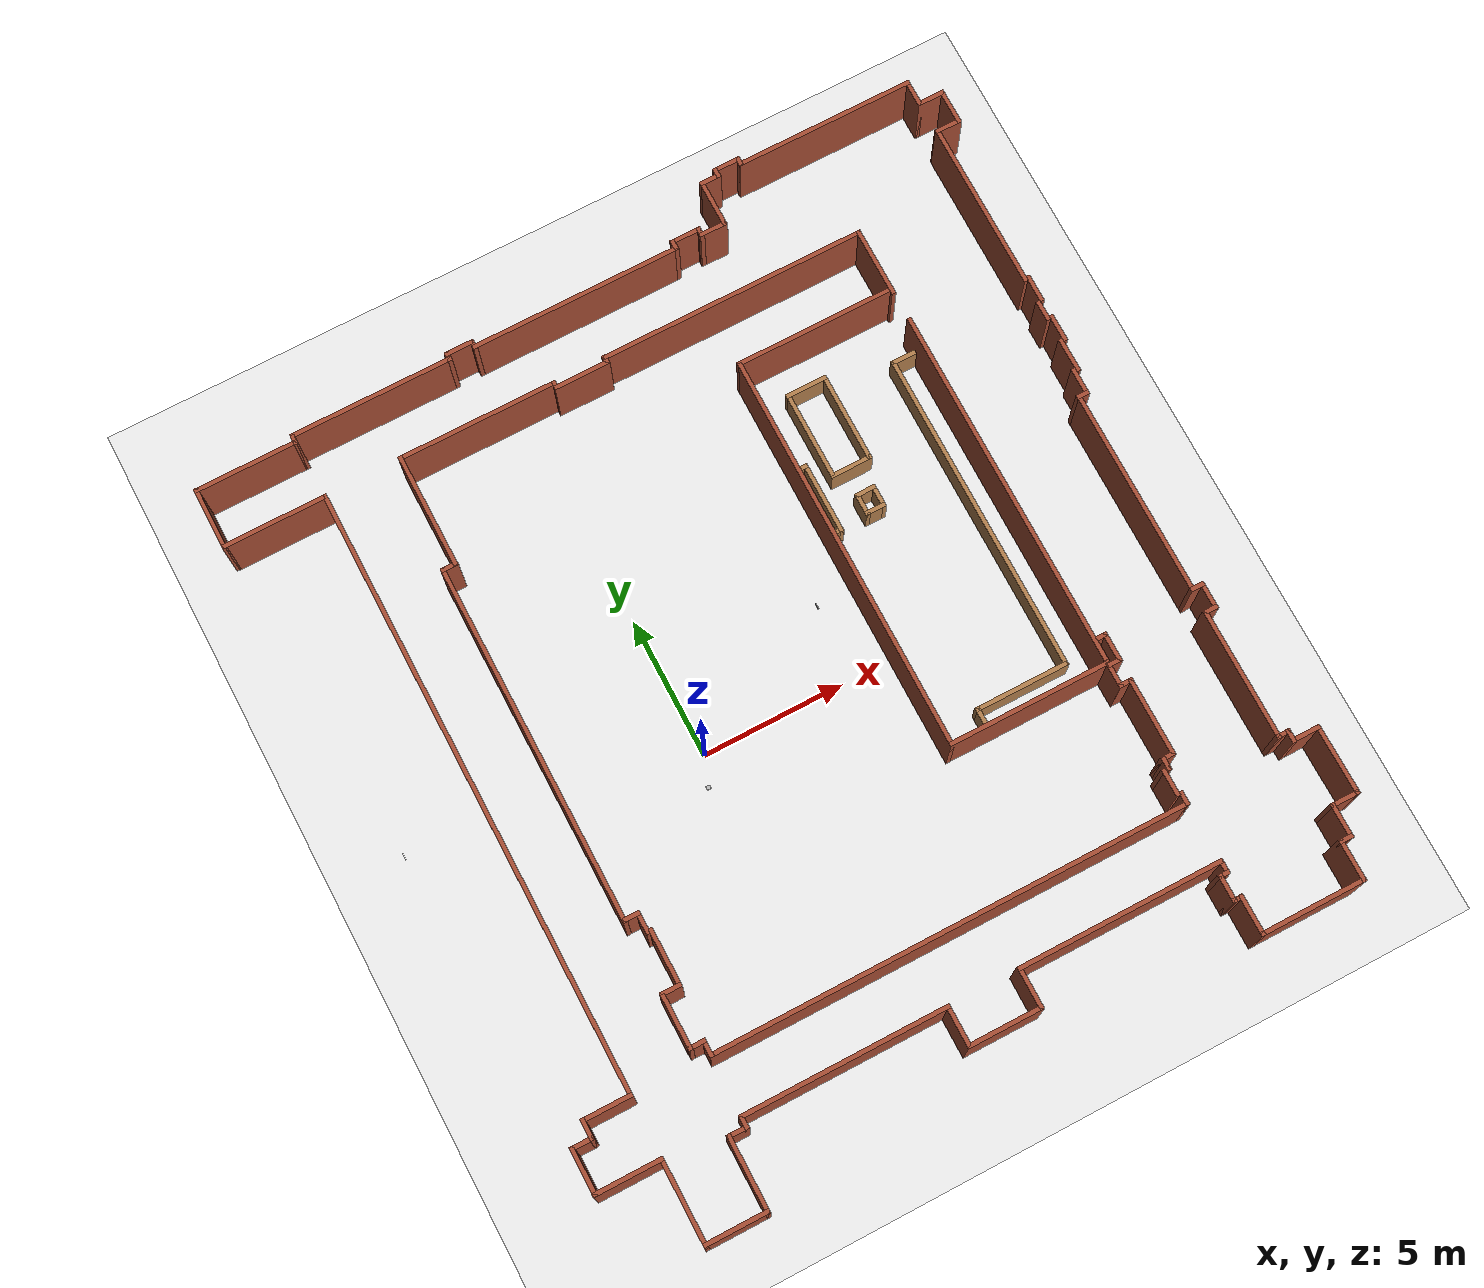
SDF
<sdf version="1.5">
 <world name="default">
  <physics type="ode">
   <max_step_size>0.001</max_step_size>
   <real_time_factor>1</real_time_factor>
   <real_time_update_rate>1000</real_time_update_rate>
   <gravity>0 0 -9.8</gravity>
  </physics>
  <include><uri>model://sun</uri></include>
  <include><uri>model://my_ground_plane</uri></include>
  <include><uri>model://A2230_arena</uri></include>
  <include><pose>7.9 15.0 0.5 0.0 1.57 1.57</pose><uri>model://Apriltag36_11_00006</uri></include>
  <include><pose>5.455 2.6 0.38 1.57 0.0 1.57</pose><uri>model://Apriltag36_11_00007</uri></include>
  <include><pose>-9.95 1.45 0.38 1.57 0.0 1.57</pose><uri>model://Apriltag36_11_00008</uri></include>
  <include><pose>12.82 6.5 0.38 0.0 1.57 0.0</pose><uri>model://Apriltag36_11_00009</uri></include>
  <include><pose>0 0 -5 0 0 0</pose><uri>model://Apriltag36_11_00002</uri></include>
 </world>
</sdf>

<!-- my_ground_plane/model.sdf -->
<sdf version="1.4">
<model name="my_ground_plane">
  <static>true</static>
    <link name="link">
      <collision name="collision">
        <geometry>
          <plane>
            <normal>0 0 1</normal>
            <size>150 150</size>
          </plane>
        </geometry>
        <surface>
          <friction>
            <ode>
              <mu>50</mu>
              <mu2>50</mu2>
            </ode>
          </friction>
        </surface>
      </collision>
      <visual name="visual">
        <cast_shadows>false</cast_shadows>
        <geometry>
          <plane>
            <normal>0 0 1</normal>
            <size>40 40</size>
          </plane>
        </geometry>
        <material>
          <script>
            <uri>model://my_ground_plane/materials/scripts</uri>
            <uri>model://my_ground_plane/materials/textures/</uri>
            <name>MyGroundPlane/Image</name>
          </script>
        </material>
      </visual>
    </link>
  </model>
</sdf>

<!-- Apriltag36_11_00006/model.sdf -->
<sdf version='1.6'>
  <model name='Apriltag36_11_00006'>
    <link name='main'>
    <pose frame=''>0 0 0 0 0 0</pose>
      <visual name='main_Visual'>
        <geometry>
          <box>
          <size>0.21 0.21 0.01</size>
          </box>
        </geometry>
           <material>
          <script>
            <uri>model://Apriltag36_11_00006/materials/scripts</uri>
            <uri>model://Apriltag36_11_00006/materials/textures</uri>
            <name>Apriltag36_11_00006</name>
          </script>
        </material>
      </visual>
     </link>
    <static>1</static>
  </model>
</sdf>

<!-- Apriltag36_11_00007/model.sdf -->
<sdf version='1.6'>
  <model name='Apriltag36_11_00007'>
    <link name='main'>
    <pose frame=''>0 0 0 0 0 0</pose>
      <visual name='main_Visual'>
        <geometry>
          <box>
          <size>0.21 0.21 0.01</size>
          </box>
        </geometry>
           <material>
          <script>
            <uri>model://Apriltag36_11_00007/materials/scripts</uri>
            <uri>model://Apriltag36_11_00007/materials/textures</uri>
            <name>Apriltag36_11_00007</name>
          </script>
        </material>
      </visual>
     </link>
    <static>1</static>
  </model>
</sdf>

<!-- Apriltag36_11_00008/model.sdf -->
<sdf version='1.6'>
  <model name='Apriltag36_11_00008'>
    <link name='main'>
    <pose frame=''>0 0 0 0 0 0</pose>
      <visual name='main_Visual'>
        <geometry>
          <box>
          <size>0.21 0.21 0.01</size>
          </box>
        </geometry>
           <material>
          <script>
            <uri>model://Apriltag36_11_00008/materials/scripts</uri>
            <uri>model://Apriltag36_11_00008/materials/textures</uri>
            <name>Apriltag36_11_00008</name>
          </script>
        </material>
      </visual>
     </link>
    <static>1</static>
  </model>
</sdf>

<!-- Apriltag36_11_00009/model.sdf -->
<sdf version='1.6'>
  <model name='Apriltag36_11_00009'>
    <link name='main'>
    <pose frame=''>0 0 0 0 0 0</pose>
      <visual name='main_Visual'>
        <geometry>
          <box>
          <size>0.21 0.21 0.01</size>
          </box>
        </geometry>
           <material>
          <script>
            <uri>model://Apriltag36_11_00009/materials/scripts</uri>
            <uri>model://Apriltag36_11_00009/materials/textures</uri>
            <name>Apriltag36_11_00009</name>
          </script>
        </material>
      </visual>
     </link>
    <static>1</static>
  </model>
</sdf>

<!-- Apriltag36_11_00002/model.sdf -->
<sdf version='1.6'>
  <model name='Apriltag36_11_00002'>
    <link name='main'>
    <pose frame=''>0 0 0 0 0 0</pose>
      <visual name='main_Visual'>
        <geometry>
          <box>
          <size>0.15 0.15 0.01</size>
          </box>
        </geometry>
           <material>
          <script>
            <uri>model://Apriltag36_11_00002/materials/scripts</uri>
            <uri>model://Apriltag36_11_00002/materials/textures</uri>
            <name>Apriltag36_11_00002</name>
          </script>
        </material>
      </visual>
     </link>
    <static>1</static>
  </model>
</sdf>
